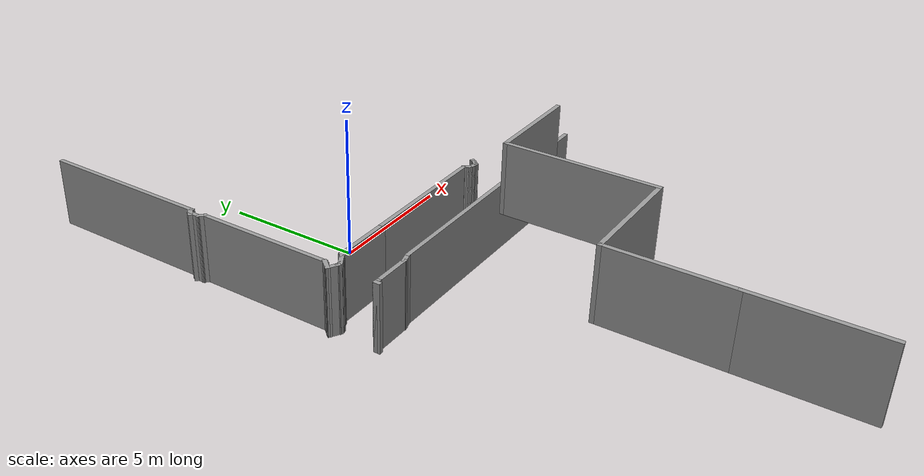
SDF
<sdf version="1.4">
 <model name="gdc">
  <pose>30.4954 -5.57665 0 0 -0 0</pose>
  <link name="Wall_10">
   <collision name="Wall_10_Collision">
    <geometry><box><size>0.25 0.15 2.5</size></box></geometry>
    <pose>0 0 1.25 0 -0 0</pose>
   </collision>
   <visual name="Wall_10_Visual">
    <pose>0 0 1.25 0 -0 0</pose>
    <geometry><box><size>0.25 0.15 2.5</size></box></geometry>
    <material>
     <script><uri>file://media/materials/scripts/gazebo.material</uri><name>Gazebo/Grey</name></script>
     <ambient>1 1 1 1</ambient>
    </material>
   </visual>
   <pose>-34.6041 8.84683 0 0 0 -2.35619</pose>
  </link>
  <link name="Wall_11">
   <collision name="Wall_11_Collision">
    <geometry><box><size>0.25 0.15 2.5</size></box></geometry>
    <pose>0 0 1.25 0 -0 0</pose>
   </collision>
   <visual name="Wall_11_Visual">
    <pose>0 0 1.25 0 -0 0</pose>
    <geometry><box><size>0.25 0.15 2.5</size></box></geometry>
    <material>
     <script><uri>file://media/materials/scripts/gazebo.material</uri><name>Gazebo/Grey</name></script>
     <ambient>1 1 1 1</ambient>
    </material>
   </visual>
   <pose>-34.6748 8.77612 0 0 0 -2.35619</pose>
  </link>
  <link name="Wall_14">
   <collision name="Wall_14_Collision">
    <geometry><box><size>0.5 0.15 2.5</size></box></geometry>
    <pose>0 0 1.25 0 -0 0</pose>
   </collision>
   <visual name="Wall_14_Visual">
    <pose>0 0 1.25 0 -0 0</pose>
    <geometry><box><size>0.5 0.15 2.5</size></box></geometry>
    <material>
     <script><uri>file://media/materials/scripts/gazebo.material</uri><name>Gazebo/Grey</name></script>
     <ambient>1 1 1 1</ambient>
    </material>
   </visual>
   <pose>-34.6394 8.63647 0 0 0 -1.5708</pose>
  </link>
  <link name="Wall_15">
   <collision name="Wall_15_Collision">
    <geometry><box><size>0.25 0.15 2.5</size></box></geometry>
    <pose>0 0 1.25 0 -0 0</pose>
   </collision>
   <visual name="Wall_15_Visual">
    <pose>0 0 1.25 0 -0 0</pose>
    <geometry><box><size>0.25 0.15 2.5</size></box></geometry>
    <material>
     <script><uri>file://media/materials/scripts/gazebo.material</uri><name>Gazebo/Grey</name></script>
     <ambient>1 1 1 1</ambient>
    </material>
   </visual>
   <pose>-34.6041 8.42612 0 0 0 -0.785398</pose>
  </link>
  <link name="Wall_155">
   <collision name="Wall_155_Collision">
    <geometry><box><size>10.25 0.15 2.5</size></box></geometry>
    <pose>0 0 1.25 0 -0 0</pose>
   </collision>
   <visual name="Wall_155_Visual">
    <pose>0 0 1.25 0 -0 0</pose>
    <geometry><box><size>10.25 0.15 2.5</size></box></geometry>
    <material>
     <script><uri>file://media/materials/scripts/gazebo.material</uri><name>Gazebo/Grey</name></script>
     <ambient>1 1 1 1</ambient>
    </material>
   </visual>
   <pose>-27.7289 1.6234 0 0 -0 3.14159</pose>
  </link>
  <link name="Wall_156">
   <collision name="Wall_156_Collision">
    <geometry><box><size>0.5 0.15 2.5</size></box></geometry>
    <pose>0 0 1.25 0 -0 0</pose>
   </collision>
   <visual name="Wall_156_Visual">
    <pose>0 0 1.25 0 -0 0</pose>
    <geometry><box><size>0.5 0.15 2.5</size></box></geometry>
    <material>
     <script><uri>file://media/materials/scripts/gazebo.material</uri><name>Gazebo/Grey</name></script>
     <ambient>1 1 1 1</ambient>
    </material>
   </visual>
   <pose>-32.948 1.5781 0 0 0 -2.87979</pose>
  </link>
  <link name="Wall_157">
   <collision name="Wall_157_Collision">
    <geometry><box><size>1.5 0.15 2.5</size></box></geometry>
    <pose>0 0 1.25 0 -0 0</pose>
   </collision>
   <visual name="Wall_157_Visual">
    <pose>0 0 1.25 0 -0 0</pose>
    <geometry><box><size>1.5 0.15 2.5</size></box></geometry>
    <material>
     <script><uri>file://media/materials/scripts/gazebo.material</uri><name>Gazebo/Grey</name></script>
     <ambient>1 1 1 1</ambient>
    </material>
   </visual>
   <pose>-33.792 1.53281 0 0 -0 3.14159</pose>
  </link>
  <link name="Wall_158">
   <collision name="Wall_158_Collision">
    <geometry><box><size>0.25 0.15 2.5</size></box></geometry>
    <pose>0 0 1.25 0 -0 0</pose>
   </collision>
   <visual name="Wall_158_Visual">
    <pose>0 0 1.25 0 -0 0</pose>
    <geometry><box><size>0.25 0.15 2.5</size></box></geometry>
    <material>
     <script><uri>file://media/materials/scripts/gazebo.material</uri><name>Gazebo/Grey</name></script>
     <ambient>1 1 1 1</ambient>
    </material>
   </visual>
   <pose>-34.517 1.53281 0 0 -0 3.14159</pose>
  </link>
  <link name="Wall_159">
   <collision name="Wall_159_Collision">
    <geometry><box><size>0.25 0.15 2.5</size></box></geometry>
    <pose>0 0 1.25 0 -0 0</pose>
   </collision>
   <visual name="Wall_159_Visual">
    <pose>0 0 1.25 0 -0 0</pose>
    <geometry><box><size>0.25 0.15 2.5</size></box></geometry>
    <material>
     <script><uri>file://media/materials/scripts/gazebo.material</uri><name>Gazebo/Grey</name></script>
     <ambient>1 1 1 1</ambient>
    </material>
   </visual>
   <pose>-34.567 1.48281 0 0 0 -1.5708</pose>
  </link>
  <link name="Wall_16">
   <collision name="Wall_16_Collision">
    <geometry><box><size>0.25 0.15 2.5</size></box></geometry>
    <pose>0 0 1.25 0 -0 0</pose>
   </collision>
   <visual name="Wall_16_Visual">
    <pose>0 0 1.25 0 -0 0</pose>
    <geometry><box><size>0.25 0.15 2.5</size></box></geometry>
    <material>
     <script><uri>file://media/materials/scripts/gazebo.material</uri><name>Gazebo/Grey</name></script>
     <ambient>1 1 1 1</ambient>
    </material>
   </visual>
   <pose>-34.5334 8.35541 0 0 0 -0.785398</pose>
  </link>
  <link name="Wall_17">
   <collision name="Wall_17_Collision">
    <geometry><box><size>5 0.15 2.5</size></box></geometry>
    <pose>0 0 1.25 0 -0 0</pose>
   </collision>
   <visual name="Wall_17_Visual">
    <pose>0 0 1.25 0 -0 0</pose>
    <geometry><box><size>5 0.15 2.5</size></box></geometry>
    <material>
     <script><uri>file://media/materials/scripts/gazebo.material</uri><name>Gazebo/Grey</name></script>
     <ambient>1 1 1 1</ambient>
    </material>
   </visual>
   <pose>-34.498 5.89505 0 0 0 -1.5708</pose>
  </link>
  <link name="Wall_18">
   <collision name="Wall_18_Collision">
    <geometry><box><size>0.25 0.15 2.5</size></box></geometry>
    <pose>0 0 1.25 0 -0 0</pose>
   </collision>
   <visual name="Wall_18_Visual">
    <pose>0 0 1.25 0 -0 0</pose>
    <geometry><box><size>0.25 0.15 2.5</size></box></geometry>
    <material>
     <script><uri>file://media/materials/scripts/gazebo.material</uri><name>Gazebo/Grey</name></script>
     <ambient>1 1 1 1</ambient>
    </material>
   </visual>
   <pose>-34.523 3.42675 0 0 0 -2.0944</pose>
  </link>
  <link name="Wall_29">
   <collision name="Wall_29_Collision">
    <geometry><box><size>0.523456 0.15 2.5</size></box></geometry>
    <pose>0 0 1.25 0 -0 0</pose>
   </collision>
   <visual name="Wall_29_Visual">
    <pose>0 0 1.25 0 -0 0</pose>
    <geometry><box><size>0.523456 0.15 2.5</size></box></geometry>
    <material>
     <script><uri>file://media/materials/scripts/gazebo.material</uri><name>Gazebo/Grey</name></script>
     <ambient>1 1 1 1</ambient>
    </material>
   </visual>
   <pose>-34.6192 3.32802 0 0 -0 0.864314</pose>
  </link>
  <link name="Wall_31">
   <collision name="Wall_31_Collision">
    <geometry><box><size>0.5 0.15 2.5</size></box></geometry>
    <pose>0 0 1.25 0 -0 0</pose>
   </collision>
   <visual name="Wall_31_Visual">
    <pose>0 0 1.25 0 -0 0</pose>
    <geometry><box><size>0.5 0.15 2.5</size></box></geometry>
    <material>
     <script><uri>file://media/materials/scripts/gazebo.material</uri><name>Gazebo/Grey</name></script>
     <ambient>1 1 1 1</ambient>
    </material>
   </visual>
   <pose>-34.5889 3.09848 0 0 0 -0.523599</pose>
  </link>
  <link name="Wall_32">
   <collision name="Wall_32_Collision">
    <geometry><box><size>0.25 0.15 2.5</size></box></geometry>
    <pose>0 0 1.25 0 -0 0</pose>
   </collision>
   <visual name="Wall_32_Visual">
    <pose>0 0 1.25 0 -0 0</pose>
    <geometry><box><size>0.25 0.15 2.5</size></box></geometry>
    <material>
     <script><uri>file://media/materials/scripts/gazebo.material</uri><name>Gazebo/Grey</name></script>
     <ambient>1 1 1 1</ambient>
    </material>
   </visual>
   <pose>-34.3874 3.01098 0 0 -0 0</pose>
  </link>
  <link name="Wall_33">
   <collision name="Wall_33_Collision">
    <geometry><box><size>0.5 0.15 2.5</size></box></geometry>
    <pose>0 0 1.25 0 -0 0</pose>
   </collision>
   <visual name="Wall_33_Visual">
    <pose>0 0 1.25 0 -0 0</pose>
    <geometry><box><size>0.5 0.15 2.5</size></box></geometry>
    <material>
     <script><uri>file://media/materials/scripts/gazebo.material</uri><name>Gazebo/Grey</name></script>
     <ambient>1 1 1 1</ambient>
    </material>
   </visual>
   <pose>-34.1858 3.09848 0 0 -0 0.523599</pose>
  </link>
  <link name="Wall_34">
   <collision name="Wall_34_Collision">
    <geometry><box><size>0.25 0.15 2.5</size></box></geometry>
    <pose>0 0 1.25 0 -0 0</pose>
   </collision>
   <visual name="Wall_34_Visual">
    <pose>0 0 1.25 0 -0 0</pose>
    <geometry><box><size>0.25 0.15 2.5</size></box></geometry>
    <material>
     <script><uri>file://media/materials/scripts/gazebo.material</uri><name>Gazebo/Grey</name></script>
     <ambient>1 1 1 1</ambient>
    </material>
   </visual>
   <pose>-33.9909 3.21098 0 0 -0 0.523599</pose>
  </link>
  <link name="Wall_35">
   <collision name="Wall_35_Collision">
    <geometry><box><size>0.25 0.15 2.5</size></box></geometry>
    <pose>0 0 1.25 0 -0 0</pose>
   </collision>
   <visual name="Wall_35_Visual">
    <pose>0 0 1.25 0 -0 0</pose>
    <geometry><box><size>0.25 0.15 2.5</size></box></geometry>
    <material>
     <script><uri>file://media/materials/scripts/gazebo.material</uri><name>Gazebo/Grey</name></script>
     <ambient>1 1 1 1</ambient>
    </material>
   </visual>
   <pose>-33.9123 3.27134 0 0 -0 0.785398</pose>
  </link>
  <link name="Wall_36">
   <collision name="Wall_36_Collision">
    <geometry><box><size>2.25 0.15 2.5</size></box></geometry>
    <pose>0 0 1.25 0 -0 0</pose>
   </collision>
   <visual name="Wall_36_Visual">
    <pose>0 0 1.25 0 -0 0</pose>
    <geometry><box><size>2.25 0.15 2.5</size></box></geometry>
    <material>
     <script><uri>file://media/materials/scripts/gazebo.material</uri><name>Gazebo/Grey</name></script>
     <ambient>1 1 1 1</ambient>
    </material>
   </visual>
   <pose>-32.8269 3.30669 0 0 -0 0</pose>
  </link>
  <link name="Wall_37">
   <collision name="Wall_37_Collision">
    <geometry><box><size>5 0.15 2.5</size></box></geometry>
    <pose>0 0 1.25 0 -0 0</pose>
   </collision>
   <visual name="Wall_37_Visual">
    <pose>0 0 1.25 0 -0 0</pose>
    <geometry><box><size>5 0.15 2.5</size></box></geometry>
    <material>
     <script><uri>file://media/materials/scripts/gazebo.material</uri><name>Gazebo/Grey</name></script>
     <ambient>1 1 1 1</ambient>
    </material>
   </visual>
   <pose>-29.3519 3.30669 0 0 -0 0</pose>
  </link>
  <link name="Wall_38">
   <collision name="Wall_38_Collision">
    <geometry><box><size>0.25 0.15 2.5</size></box></geometry>
    <pose>0 0 1.25 0 -0 0</pose>
   </collision>
   <visual name="Wall_38_Visual">
    <pose>0 0 1.25 0 -0 0</pose>
    <geometry><box><size>0.25 0.15 2.5</size></box></geometry>
    <material>
     <script><uri>file://media/materials/scripts/gazebo.material</uri><name>Gazebo/Grey</name></script>
     <ambient>1 1 1 1</ambient>
    </material>
   </visual>
   <pose>-26.9019 3.26339 0 0 0 -1.0472</pose>
  </link>
  <link name="Wall_39">
   <collision name="Wall_39_Collision">
    <geometry><box><size>0.25 0.15 2.5</size></box></geometry>
    <pose>0 0 1.25 0 -0 0</pose>
   </collision>
   <visual name="Wall_39_Visual">
    <pose>0 0 1.25 0 -0 0</pose>
    <geometry><box><size>0.25 0.15 2.5</size></box></geometry>
    <material>
     <script><uri>file://media/materials/scripts/gazebo.material</uri><name>Gazebo/Grey</name></script>
     <ambient>1 1 1 1</ambient>
    </material>
   </visual>
   <pose>-26.8416 3.18473 0 0 0 -0.785398</pose>
  </link>
  <link name="Wall_40">
   <collision name="Wall_40_Collision">
    <geometry><box><size>0.25 0.15 2.5</size></box></geometry>
    <pose>0 0 1.25 0 -0 0</pose>
   </collision>
   <visual name="Wall_40_Visual">
    <pose>0 0 1.25 0 -0 0</pose>
    <geometry><box><size>0.25 0.15 2.5</size></box></geometry>
    <material>
     <script><uri>file://media/materials/scripts/gazebo.material</uri><name>Gazebo/Grey</name></script>
     <ambient>1 1 1 1</ambient>
    </material>
   </visual>
   <pose>-26.7629 3.12438 0 0 0 -0.523599</pose>
  </link>
  <link name="Wall_41">
   <collision name="Wall_41_Collision">
    <geometry><box><size>0.25 0.15 2.5</size></box></geometry>
    <pose>0 0 1.25 0 -0 0</pose>
   </collision>
   <visual name="Wall_41_Visual">
    <pose>0 0 1.25 0 -0 0</pose>
    <geometry><box><size>0.25 0.15 2.5</size></box></geometry>
    <material>
     <script><uri>file://media/materials/scripts/gazebo.material</uri><name>Gazebo/Grey</name></script>
     <ambient>1 1 1 1</ambient>
    </material>
   </visual>
   <pose>-26.6713 3.08644 0 0 0 -0.261799</pose>
  </link>
  <link name="Wall_42">
   <collision name="Wall_42_Collision">
    <geometry><box><size>0.25 0.15 2.5</size></box></geometry>
    <pose>0 0 1.25 0 -0 0</pose>
   </collision>
   <visual name="Wall_42_Visual">
    <pose>0 0 1.25 0 -0 0</pose>
    <geometry><box><size>0.25 0.15 2.5</size></box></geometry>
    <material>
     <script><uri>file://media/materials/scripts/gazebo.material</uri><name>Gazebo/Grey</name></script>
     <ambient>1 1 1 1</ambient>
    </material>
   </visual>
   <pose>-26.573 3.0735 0 0 -0 0</pose>
  </link>
  <link name="Wall_43">
   <collision name="Wall_43_Collision">
    <geometry><box><size>0.25 0.15 2.5</size></box></geometry>
    <pose>0 0 1.25 0 -0 0</pose>
   </collision>
   <visual name="Wall_43_Visual">
    <pose>0 0 1.25 0 -0 0</pose>
    <geometry><box><size>0.25 0.15 2.5</size></box></geometry>
    <material>
     <script><uri>file://media/materials/scripts/gazebo.material</uri><name>Gazebo/Grey</name></script>
     <ambient>1 1 1 1</ambient>
    </material>
   </visual>
   <pose>-26.4877 3.10885 0 0 -0 0.785398</pose>
  </link>
  <link name="Wall_44">
   <collision name="Wall_44_Collision">
    <geometry><box><size>0.25 0.15 2.5</size></box></geometry>
    <pose>0 0 1.25 0 -0 0</pose>
   </collision>
   <visual name="Wall_44_Visual">
    <pose>0 0 1.25 0 -0 0</pose>
    <geometry><box><size>0.25 0.15 2.5</size></box></geometry>
    <material>
     <script><uri>file://media/materials/scripts/gazebo.material</uri><name>Gazebo/Grey</name></script>
     <ambient>1 1 1 1</ambient>
    </material>
   </visual>
   <pose>-26.417 3.17956 0 0 -0 0.785398</pose>
  </link>
  <link name="Wall_45">
   <collision name="Wall_45_Collision">
    <geometry><box><size>0.25 0.15 2.5</size></box></geometry>
    <pose>0 0 1.25 0 -0 0</pose>
   </collision>
   <visual name="Wall_45_Visual">
    <pose>0 0 1.25 0 -0 0</pose>
    <geometry><box><size>0.25 0.15 2.5</size></box></geometry>
    <material>
     <script><uri>file://media/materials/scripts/gazebo.material</uri><name>Gazebo/Grey</name></script>
     <ambient>1 1 1 1</ambient>
    </material>
   </visual>
   <pose>-26.3566 3.25822 0 0 -0 1.0472</pose>
  </link>
  <link name="Wall_676">
   <collision name="Wall_676_Collision">
    <geometry><box><size>3.5 0.15 2.5</size></box></geometry>
    <pose>0 0 1.25 0 -0 0</pose>
   </collision>
   <visual name="Wall_676_Visual">
    <pose>0 0 1.25 0 -0 0</pose>
    <geometry><box><size>3.5 0.15 2.5</size></box></geometry>
    <material>
     <script><uri>file://media/materials/scripts/gazebo.material</uri><name>Gazebo/Grey</name></script>
     <ambient>1 1 1 1</ambient>
    </material>
   </visual>
   <pose>-27.3057 0.558684 2.5 0 -0 3.14159</pose>
  </link>
  <link name="Wall_677">
   <collision name="Wall_677_Collision">
    <geometry><box><size>5.25 0.15 2.5</size></box></geometry>
    <pose>0 0 1.25 0 -0 0</pose>
   </collision>
   <visual name="Wall_677_Visual">
    <pose>0 0 1.25 0 -0 0</pose>
    <geometry><box><size>5.25 0.15 2.5</size></box></geometry>
    <material>
     <script><uri>file://media/materials/scripts/gazebo.material</uri><name>Gazebo/Grey</name></script>
     <ambient>1 1 1 1</ambient>
    </material>
   </visual>
   <pose>-28.9807 -1.99132 2.5 0 0 -1.5708</pose>
  </link>
  <link name="Wall_686">
   <collision name="Wall_686_Collision">
    <geometry><box><size>4 0.15 2.5</size></box></geometry>
    <pose>0 0 1.25 0 -0 0</pose>
   </collision>
   <visual name="Wall_686_Visual">
    <pose>0 0 1.25 0 -0 0</pose>
    <geometry><box><size>4 0.15 2.5</size></box></geometry>
    <material>
     <script><uri>file://media/materials/scripts/gazebo.material</uri><name>Gazebo/Grey</name></script>
     <ambient>1 1 1 1</ambient>
    </material>
   </visual>
   <pose>-30.9057 -4.54132 2.5 0 -0 3.14159</pose>
  </link>
  <link name="Wall_687">
   <collision name="Wall_687_Collision">
    <geometry><box><size>4 0.15 2.5</size></box></geometry>
    <pose>0 0 1.25 0 -0 0</pose>
   </collision>
   <visual name="Wall_687_Visual">
    <pose>0 0 1.25 0 -0 0</pose>
    <geometry><box><size>4 0.15 2.5</size></box></geometry>
    <material>
     <script><uri>file://media/materials/scripts/gazebo.material</uri><name>Gazebo/Grey</name></script>
     <ambient>1 1 1 1</ambient>
    </material>
   </visual>
   <pose>-32.8307 -6.46632 2.5 0 0 -1.5708</pose>
  </link>
  <link name="Wall_688">
   <collision name="Wall_688_Collision">
    <geometry><box><size>4 0.15 2.5</size></box></geometry>
    <pose>0 0 1.25 0 -0 0</pose>
   </collision>
   <visual name="Wall_688_Visual">
    <pose>0 0 1.25 0 -0 0</pose>
    <geometry><box><size>4 0.15 2.5</size></box></geometry>
    <material>
     <script><uri>file://media/materials/scripts/gazebo.material</uri><name>Gazebo/Grey</name></script>
     <ambient>1 1 1 1</ambient>
    </material>
   </visual>
   <pose>-32.8307 -10.3163 2.5 0 0 -1.5708</pose>
  </link>
  <link name="Wall_8">
   <collision name="Wall_8_Collision">
    <geometry><box><size>6.25 0.15 2.5</size></box></geometry>
    <pose>0 0 1.25 0 -0 0</pose>
   </collision>
   <visual name="Wall_8_Visual">
    <pose>0 0 1.25 0 -0 0</pose>
    <geometry><box><size>6.25 0.15 2.5</size></box></geometry>
    <material>
     <script><uri>file://media/materials/scripts/gazebo.material</uri><name>Gazebo/Grey</name></script>
     <ambient>1 1 1 1</ambient>
    </material>
   </visual>
   <pose>-34.4721 11.9581 0 0 0 -1.5708</pose>
  </link>
  <link name="Wall_9">
   <collision name="Wall_9_Collision">
    <geometry><box><size>0.25 0.15 2.5</size></box></geometry>
    <pose>0 0 1.25 0 -0 0</pose>
   </collision>
   <visual name="Wall_9_Visual">
    <pose>0 0 1.25 0 -0 0</pose>
    <geometry><box><size>0.25 0.15 2.5</size></box></geometry>
    <material>
     <script><uri>file://media/materials/scripts/gazebo.material</uri><name>Gazebo/Grey</name></script>
     <ambient>1 1 1 1</ambient>
    </material>
   </visual>
   <pose>-34.5204 8.89512 0 0 0 -2.87979</pose>
  </link>
  <static>1</static>
 </model>
</sdf>
